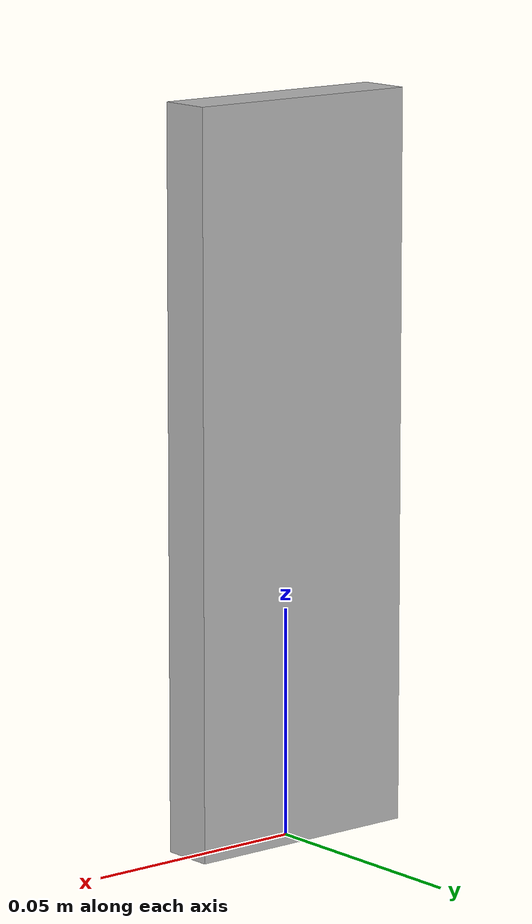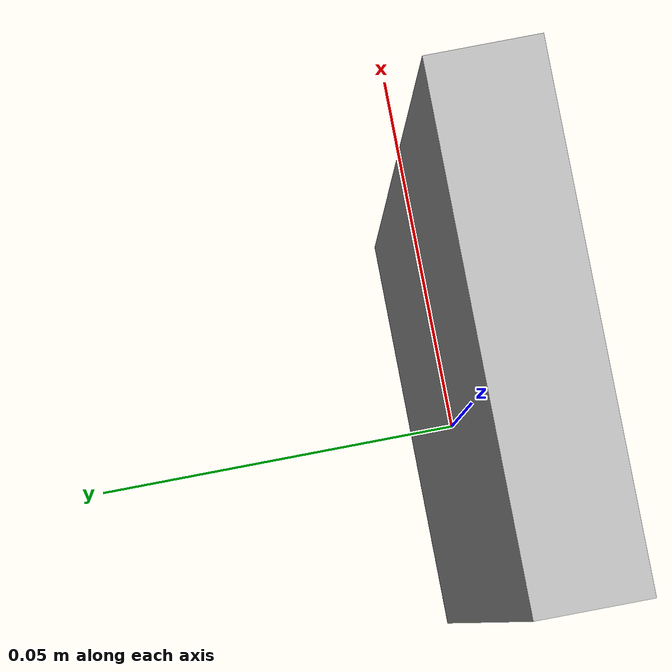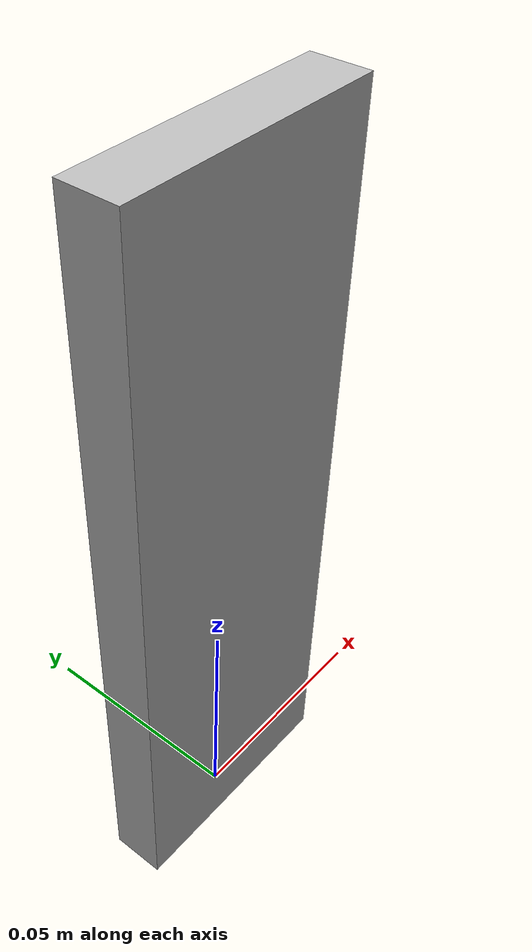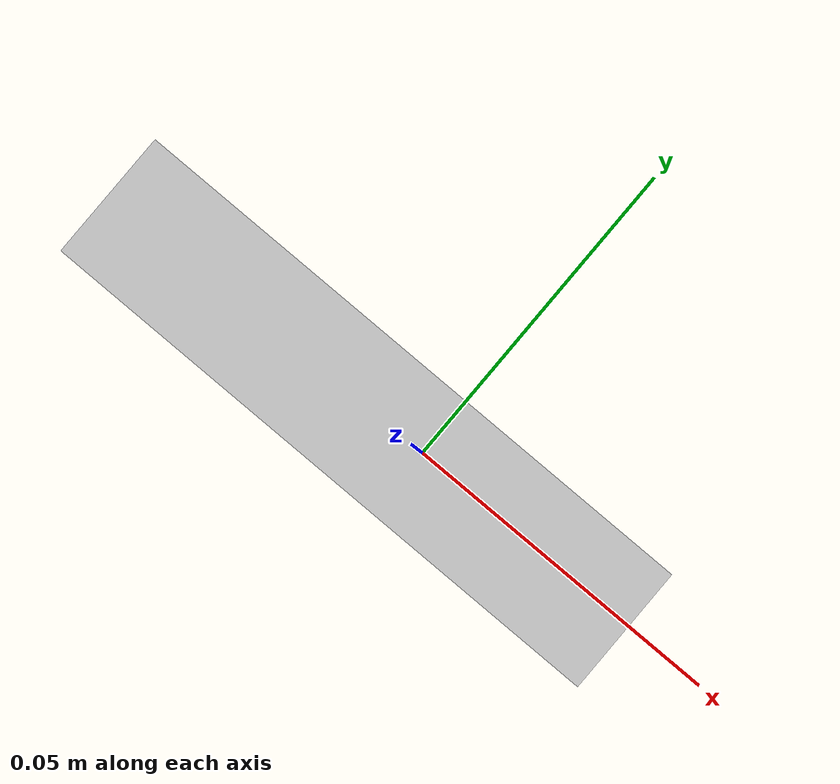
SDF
<?xml version="1.0"?>
<sdf version="1.9">
  <model name="textured_drug_002">
    <static>false</static>
    <self_collide>false</self_collide>
    <link name="body">
      <inertial>
        <pose>0 0 0.080000 0 0 0</pose>
        <mass>0.022202</mass>
        <inertia>
          <ixx>0.00004762</ixx>
          <ixy>0.0</ixy>
          <ixz>0.0</ixz>
          <iyy>0.00005277</iyy>
          <iyz>0.0</iyz>
          <izz>0.00000565</izz>
        </inertia>
      </inertial>
      <collision name="collision">
        <pose>0 0 0.080000 0 0 0</pose>
        <geometry><box><size>0.054038 0.011672 0.160000</size></box></geometry>
        <surface>
          <friction>
            <ode>
              <mu>1.300</mu>
              <mu2>1.300</mu2>
            </ode>
          </friction>
          <contact>
            <ode>
              <kp>120000.0</kp>
              <kd>8.0</kd>
            </ode>
          </contact>
        </surface>
      </collision>
      <visual name="visual">
        <pose>0 0 0.080000 0 0 0</pose>
        <geometry>
          <mesh>
            <uri>meshes/model.obj</uri>
            <scale>1 1.350000 1.000000</scale>
          </mesh>
        </geometry>
      </visual>
    </link>
  </model>
</sdf>
